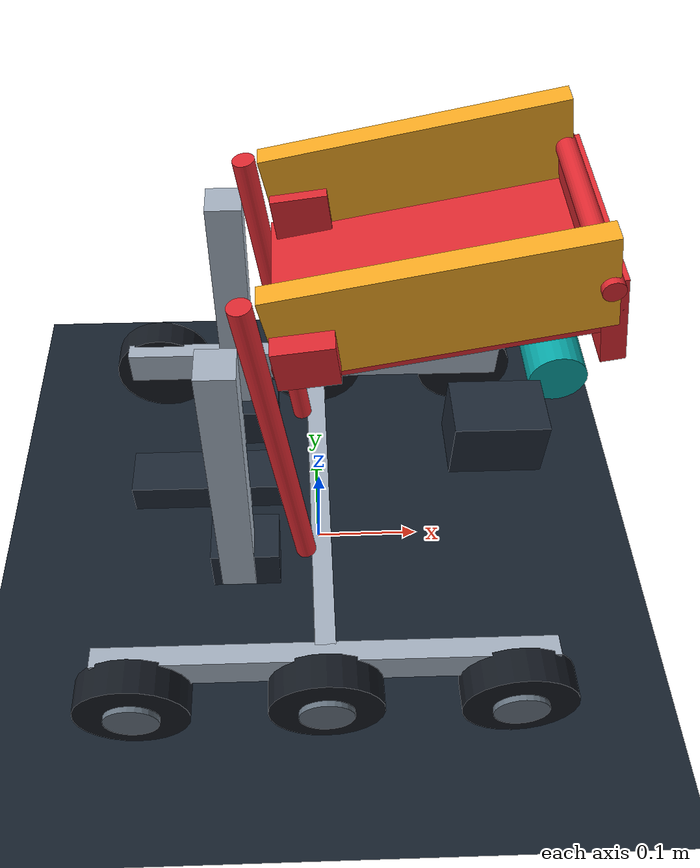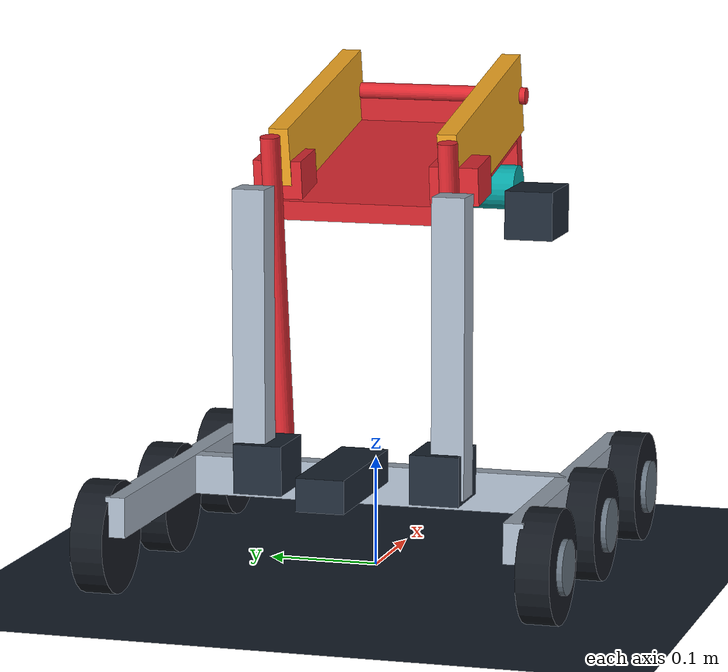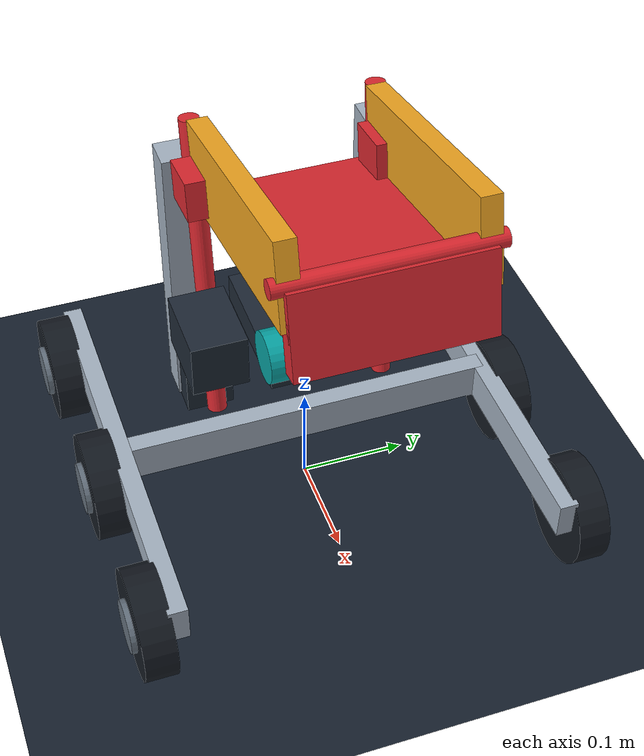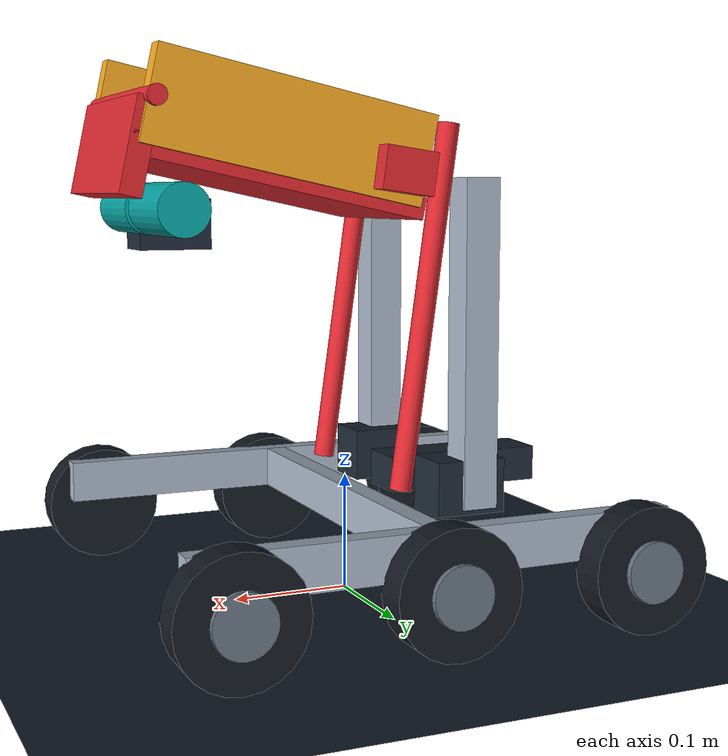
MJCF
<mujoco model="Lead-Screw Tilting Table"><compiler angle="degree" /><visual><global offwidth="800" offheight="600" /><quality offsamples="0" /><headlight ambient=".45 .45 .45" /></visual><worldbody><light pos="0 -1 3" castshadow="false" /><geom type="plane" size="2 2 .1" rgba=".09 .13 .18 1" /><geom type="box" pos="0 -0.18 0.0758" size="0.2 0.009 0.018" euler="0 0 0" rgba=".65 .7 .76 1" contype="0" conaffinity="0" /><geom type="box" pos="0 0.18 0.0758" size="0.2 0.009 0.018" euler="0 0 0" rgba=".65 .7 .76 1" contype="0" conaffinity="0" /><geom type="box" pos="0 0 0.0758" size="0.009 0.18 0.018" euler="0 0 0" rgba=".65 .7 .76 1" contype="0" conaffinity="0" /><geom type="cylinder" pos="-0.1675 -0.20099999999999998 0.0508" size="0.0508 0.015" euler="90 0 0" rgba=".08 .1 .13 1" contype="0" conaffinity="0" /><geom type="cylinder" pos="-0.1675 -0.218 0.0508" size="0.024384 0.003" euler="90 0 0" rgba=".4 .45 .5 1" contype="0" conaffinity="0" /><geom type="cylinder" pos="0.0 -0.20099999999999998 0.0508" size="0.0508 0.015" euler="90 0 0" rgba=".08 .1 .13 1" contype="0" conaffinity="0" /><geom type="cylinder" pos="0.0 -0.218 0.0508" size="0.024384 0.003" euler="90 0 0" rgba=".4 .45 .5 1" contype="0" conaffinity="0" /><geom type="cylinder" pos="0.1675 -0.20099999999999998 0.0508" size="0.0508 0.015" euler="90 0 0" rgba=".08 .1 .13 1" contype="0" conaffinity="0" /><geom type="cylinder" pos="0.1675 -0.218 0.0508" size="0.024384 0.003" euler="90 0 0" rgba=".4 .45 .5 1" contype="0" conaffinity="0" /><geom type="cylinder" pos="-0.1675 0.20099999999999998 0.0508" size="0.0508 0.015" euler="90 0 0" rgba=".08 .1 .13 1" contype="0" conaffinity="0" /><geom type="cylinder" pos="-0.1675 0.218 0.0508" size="0.024384 0.003" euler="90 0 0" rgba=".4 .45 .5 1" contype="0" conaffinity="0" /><geom type="cylinder" pos="0.0 0.20099999999999998 0.0508" size="0.0508 0.015" euler="90 0 0" rgba=".08 .1 .13 1" contype="0" conaffinity="0" /><geom type="cylinder" pos="0.0 0.218 0.0508" size="0.024384 0.003" euler="90 0 0" rgba=".4 .45 .5 1" contype="0" conaffinity="0" /><geom type="cylinder" pos="0.1675 0.20099999999999998 0.0508" size="0.0508 0.015" euler="90 0 0" rgba=".08 .1 .13 1" contype="0" conaffinity="0" /><geom type="cylinder" pos="0.1675 0.218 0.0508" size="0.024384 0.003" euler="90 0 0" rgba=".4 .45 .5 1" contype="0" conaffinity="0" /><geom type="box" pos="-0.105 0.0 0.1008" size="0.07 0.022 0.015" euler="0 0 0" rgba=".12 .16 .21 1" contype="0" conaffinity="0" /><geom type="box" pos="-0.075 0.092 0.22" size="0.015 0.015 0.135" euler="0.0 0.0 0.0" rgba=".65 .7 .76 1" contype="0" conaffinity="0" /><geom type="box" pos="-0.075 -0.092 0.22" size="0.015 0.015 0.135" euler="0.0 0.0 0.0" rgba=".65 .7 .76 1" contype="0" conaffinity="0" /><geom type="cylinder" pos="-0.035 0.082 0.25" size="0.009 0.15" euler="0.0 -8.0 0.0" rgba=".87 .16 .19 1" contype="0" conaffinity="0" /><geom type="cylinder" pos="-0.035 -0.082 0.25" size="0.009 0.15" euler="0.0 -8.0 0.0" rgba=".87 .16 .19 1" contype="0" conaffinity="0" /><geom type="box" pos="-0.012 0.082 0.36" size="0.0225 0.0225 0.0175" euler="0.0 -8.0 0.0" rgba=".87 .16 .19 1" contype="0" conaffinity="0" /><geom type="box" pos="-0.012 -0.082 0.36" size="0.0225 0.0225 0.0175" euler="0.0 -8.0 0.0" rgba=".87 .16 .19 1" contype="0" conaffinity="0" /><geom type="box" pos="0.085 0.0 0.355" size="0.1225 0.0825 0.009" euler="0.0 -12.0 0.0" rgba=".87 .16 .19 1" contype="0" conaffinity="0" /><geom type="box" pos="0.078 0.078 0.392" size="0.1175 0.009 0.0375" euler="0.0 -12.0 0.0" rgba=".96 .66 .13 1" contype="0" conaffinity="0" /><geom type="box" pos="0.078 -0.078 0.392" size="0.1175 0.009 0.0375" euler="0.0 -12.0 0.0" rgba=".96 .66 .13 1" contype="0" conaffinity="0" /><geom type="cylinder" pos="0.168 0.048 0.33" size="0.021 0.0425" euler="90.0 0.0 0.0" rgba=".03 .65 .65 1" contype="0" conaffinity="0" /><geom type="cylinder" pos="0.168 -0.048 0.33" size="0.021 0.0425" euler="90.0 0.0 0.0" rgba=".03 .65 .65 1" contype="0" conaffinity="0" /><geom type="box" pos="0.199 0.0 0.377" size="0.009 0.0825 0.0375" euler="0.0 -12.0 0.0" rgba=".87 .16 .19 1" contype="0" conaffinity="0" /><geom type="cylinder" pos="0.188 0.0 0.414" size="0.008 0.0925" euler="90.0 0.0 0.0" rgba=".87 .16 .19 1" contype="0" conaffinity="0" /><geom type="box" pos="-0.068 0.082 0.103" size="0.03 0.0225 0.0225" euler="0.0 0.0 0.0" rgba=".12 .16 .21 1" contype="0" conaffinity="0" /><geom type="box" pos="-0.068 -0.082 0.103" size="0.03 0.0225 0.0225" euler="0.0 0.0 0.0" rgba=".12 .16 .21 1" contype="0" conaffinity="0" /><geom type="box" pos="0.12 -0.12 0.315" size="0.0325 0.0225 0.0225" euler="0.0 0.0 0.0" rgba=".12 .16 .21 1" contype="0" conaffinity="0" /></worldbody></mujoco>
